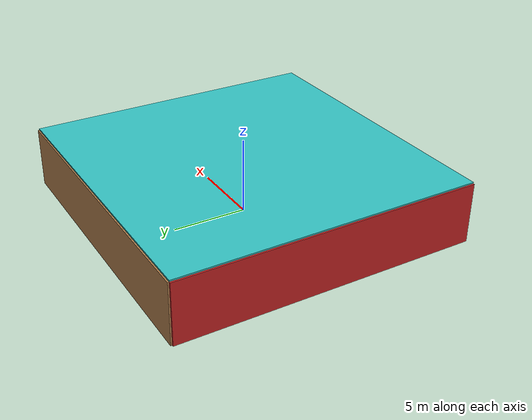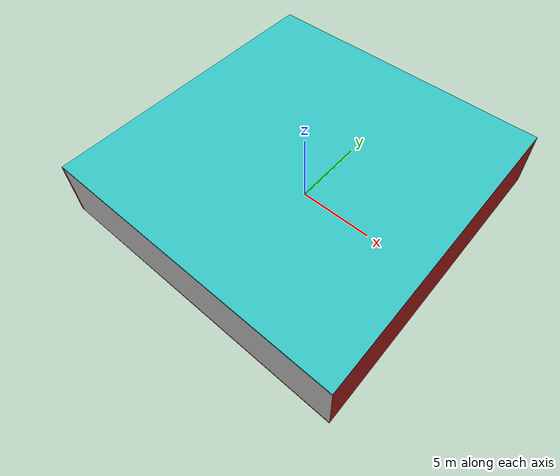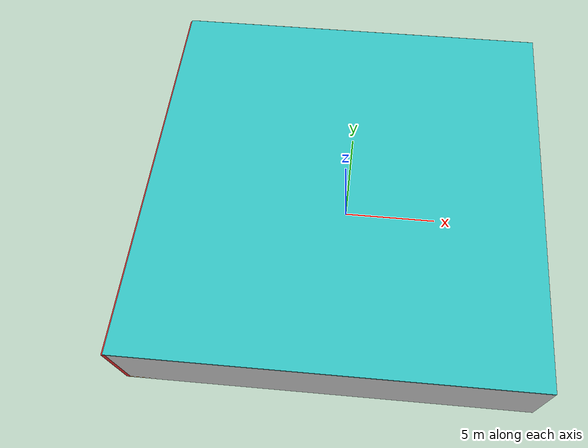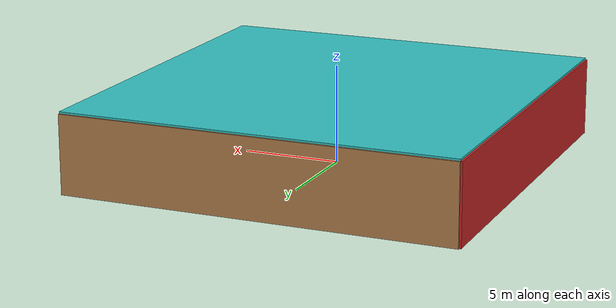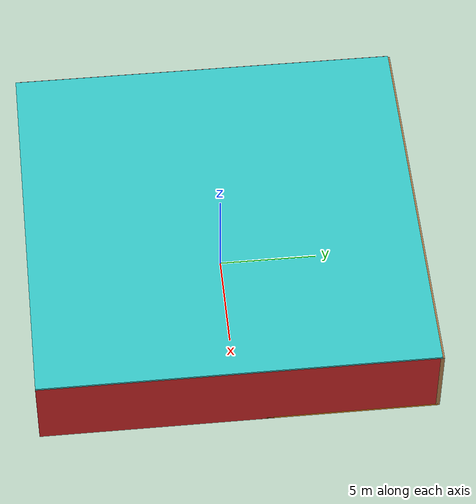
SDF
<sdf version="1.4">
 <world name="default">
  <physics type="ode">
   <max_step_size>0.001</max_step_size>
   <real_time_factor>1</real_time_factor>
   <real_time_update_rate>1000</real_time_update_rate>
   <gravity>0 0 -9.8</gravity>
  </physics>
  <scene><ambient>0.4 0.4 0.4 1</ambient><background>0.7 0.7 0.7 1</background><shadows>1</shadows></scene>
  <model name="Surrounding">
   <static>1</static>
   <link name="Ceiling">
    <collision name="Ceiling_Collision"><geometry><box><size>20 20 0.1</size></box></geometry></collision>
    <visual name="Ceiling_Visual">
     <geometry><box><size>20 20 0.1</size></box></geometry>
     <material>
      <script><uri>file://media/materials/scripts/gazebo.material</uri><name>Gazebo/TurquoiseGlow</name></script>
     </material>
    </visual>
    <pose>0 0 4.05 0 0 0</pose>
   </link>
   <link name="Wall_South">
    <collision name="Wall_South_Collision">
     <geometry><box><size>20 0 4</size></box></geometry>
     <pose>0 0 2 0 -0 0</pose>
    </collision>
    <visual name="Wall_South_Visual">
     <pose>0 0 2 0 -0 0</pose>
     <geometry><box><size>20 0 4</size></box></geometry>
     <material>
      <script><uri>file://media/materials/scripts/gazebo.material</uri><name>Gazebo/LightOn</name></script>
     </material>
    </visual>
    <velocity_decay><linear>0</linear><angular>0</angular></velocity_decay>
    <pose>0 -10 0 0 -0 0</pose>
   </link>
   <link name="Wall_East">
    <collision name="Wall_21_Collision">
     <geometry><box><size>20 0 4</size></box></geometry>
     <pose>0 0 2 0 -0 0</pose>
    </collision>
    <visual name="Wall_21_Visual">
     <pose>0 0 2 0 -0 0</pose>
     <geometry><box><size>20 0 4</size></box></geometry>
     <material>
      <script><uri>file://media/materials/scripts/gazebo.material</uri><name>Gazebo/RedBright</name></script>
     </material>
    </visual>
    <velocity_decay><linear>0</linear><angular>0</angular></velocity_decay>
    <pose>10 0 0 0 -0 1.5708</pose>
   </link>
   <link name="Wall_North">
    <collision name="Wall_22_Collision">
     <geometry><box><size>20 0.2 4</size></box></geometry>
     <pose>0 0 2 0 -0 0</pose>
    </collision>
    <visual name="Wall_22_Visual">
     <pose>0 0 2 0 -0 0</pose>
     <geometry><box><size>20 0.2 4</size></box></geometry>
     <material>
      <script><uri>file://media/materials/scripts/gazebo.material</uri><name>Gazebo/WoodPallet</name></script>
     </material>
    </visual>
    <velocity_decay><linear>0</linear><angular>0</angular></velocity_decay>
    <pose>0 10 0 0 -0 0</pose>
   </link>
   <link name="Wall_West">
    <collision name="Wall_23_Collision">
     <geometry><box><size>20 0.2 4</size></box></geometry>
     <pose>0 0 2 0 -0 0</pose>
    </collision>
    <visual name="Wall_23_Visual">
     <pose>0 0 2 0 -0 0</pose>
     <geometry><box><size>20 0.2 4</size></box></geometry>
     <material>
      <script><uri>file://media/materials/scripts/gazebo.material</uri><name>Gazebo/RedGlow</name></script>
     </material>
    </visual>
    <velocity_decay><linear>0</linear><angular>0</angular></velocity_decay>
    <pose>-10 0 0 0 0 -1.5708</pose>
   </link>
   <link name="Ground_link">
    <collision name="collision">
     <pose>0 0 .05 0 -0 0</pose>
     <geometry><box><size>20 20 0.1</size></box></geometry>
    </collision>
    <visual name="visual">
     <pose>0 0 .05 0 -0 0</pose>
     <geometry><box><size>20 20 0.1</size></box></geometry>
     <material>
      <script><uri>file://media/materials/scripts/gazebo.material</uri><name>Gazebo/Orange</name></script>
     </material>
    </visual>
   </link>
   <static>1</static>
  </model>
  <spherical_coordinates>
   <surface_model>EARTH_WGS84</surface_model>
   <latitude_deg>0</latitude_deg>
   <longitude_deg>0</longitude_deg>
   <elevation>0</elevation>
   <heading_deg>0</heading_deg>
  </spherical_coordinates>
  <light name="lightball_0" type="diffuse">
   <diffuse>0.8 0.8 0.8 1</diffuse>
   <specular>0.2 0.2 0.2 1</specular>
   <attenuation>
    <range>100</range>
    <constant>0.7</constant>
    <linear>0.01</linear>
    <quadratic>0.001</quadratic>
   </attenuation>
   <direction>-0.5 0.1 -0.9</direction>
   <pose>-3.56815844558 3.614813284 1.6771239949 0 0 0</pose>
  </light>
  <light name="lightball_1" type="diffuse">
   <diffuse>0.8 0.8 0.8 1</diffuse>
   <specular>0.2 0.2 0.2 1</specular>
   <attenuation>
    <range>100</range>
    <constant>0.7</constant>
    <linear>0.01</linear>
    <quadratic>0.001</quadratic>
   </attenuation>
   <direction>-0.5 0.1 -0.9</direction>
   <pose>9.80166187427 6.97649371949 1.89212701074 0 0 0</pose>
  </light>
  <light name="lightball_2" type="diffuse">
   <diffuse>0.8 0.8 0.8 1</diffuse>
   <specular>0.2 0.2 0.2 1</specular>
   <attenuation>
    <range>100</range>
    <constant>0.7</constant>
    <linear>0.01</linear>
    <quadratic>0.001</quadratic>
   </attenuation>
   <direction>-0.5 0.1 -0.9</direction>
   <pose>-8.46107886899 -1.4100339471 3.71217616666 0 0 0</pose>
  </light>
  <light name="lightball_3" type="diffuse">
   <diffuse>0.8 0.8 0.8 1</diffuse>
   <specular>0.2 0.2 0.2 1</specular>
   <attenuation>
    <range>100</range>
    <constant>0.7</constant>
    <linear>0.01</linear>
    <quadratic>0.001</quadratic>
   </attenuation>
   <direction>-0.5 0.1 -0.9</direction>
   <pose>7.65079314462 -5.25415447036 1.78704008869 0 0 0</pose>
  </light>
  <include><uri>model://table</uri><pose>-5.02059354833 -2.12108375199 0 0 0 2.41470717591</pose></include>
  <include>
   <uri>model://robocup_3Dsim_goal</uri>
   <pose>-0.855574592526 5.25867074691 0 0 0 2.1240897324</pose>
  </include>
  <include><uri>model://table</uri><pose>1.74086939621 -1.98833510028 0 0 0 0.327364999853</pose></include>
  <include><uri>model://cabinet</uri><pose>4.08756323566 -7.37397904064 0 0 0 0.828362521863</pose></include>
  <include>
   <uri>model://construction_cone</uri>
   <pose>3.94054977939 4.70222307469 0 0 0 1.12095095254</pose>
  </include>
 </world>
</sdf>

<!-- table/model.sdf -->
<sdf version="1.5">
  <model name="table">
    <static>true</static>
    <link name="link">
      <collision name="surface">
        <pose>0 0 1.0 0 0 0</pose>
        <geometry>
          <box>
            <size>1.5 0.8 0.03</size>
          </box>
        </geometry>
        <surface>
          <friction>
            <ode>
              <mu>0.6</mu>
              <mu2>0.6</mu2>
            </ode>
          </friction>
        </surface>
      </collision>
      <visual name="visual1">
        <pose>0 0 1.0 0 0 0</pose>
        <geometry>
          <box>
            <size>1.5 0.8 0.03</size>
          </box>
        </geometry>
        <material>
          <script>
            <uri>model://media/materials/scripts/gazebo.material</uri>
            <name>Gazebo/Wood</name>
          </script>
        </material>
      </visual>
      <collision name="front_left_leg">
        <pose>0.68 0.38 0.5 0 0 0</pose>
        <geometry>
          <cylinder>
            <radius>0.02</radius>
            <length>1.0</length>
          </cylinder>
        </geometry>
      </collision>
      <visual name="front_left_leg">
        <pose>0.68 0.38 0.5 0 0 0</pose>
        <geometry>
          <cylinder>
            <radius>0.02</radius>
            <length>1.0</length>
          </cylinder>
        </geometry>
        <material>
          <script>
            <uri>model://media/materials/scripts/gazebo.material</uri>
            <name>Gazebo/Grey</name>
          </script>
        </material>
      </visual>
      <collision name="front_right_leg">
        <pose>0.68 -0.38 0.5 0 0 0</pose>
        <geometry>
          <cylinder>
            <radius>0.02</radius>
            <length>1.0</length>
          </cylinder>
        </geometry>
      </collision>
      <visual name="front_right_leg">
        <pose>0.68 -0.38 0.5 0 0 0</pose>
        <geometry>
          <cylinder>
            <radius>0.02</radius>
            <length>1.0</length>
          </cylinder>
        </geometry>
        <material>
          <script>
            <uri>model://media/materials/scripts/gazebo.material</uri>
            <name>Gazebo/Grey</name>
          </script>
        </material>
      </visual>
      <collision name="back_right_leg">
        <pose>-0.68 -0.38 0.5 0 0 0</pose>
        <geometry>
          <cylinder>
            <radius>0.02</radius>
            <length>1.0</length>
          </cylinder>
        </geometry>
      </collision>
      <visual name="back_right_leg">
        <pose>-0.68 -0.38 0.5 0 0 0</pose>
        <geometry>
          <cylinder>
            <radius>0.02</radius>
            <length>1.0</length>
          </cylinder>
        </geometry>
        <material>
          <script>
            <uri>model://media/materials/scripts/gazebo.material</uri>
            <name>Gazebo/Grey</name>
          </script>
        </material>
      </visual>
      <collision name="back_left_leg">
        <pose>-0.68 0.38 0.5 0 0 0</pose>
        <geometry>
          <cylinder>
            <radius>0.02</radius>
            <length>1.0</length>
          </cylinder>
        </geometry>
      </collision>
      <visual name="back_left_leg">
        <pose>-0.68 0.38 0.5 0 0 0</pose>
        <geometry>
          <cylinder>
            <radius>0.02</radius>
            <length>1.0</length>
          </cylinder>
        </geometry>
        <material>
          <script>
            <uri>model://media/materials/scripts/gazebo.material</uri>
            <name>Gazebo/Grey</name>
          </script>
        </material>
      </visual>
    </link>
  </model>
</sdf>

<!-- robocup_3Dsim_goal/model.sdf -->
<sdf version="1.5">
  <model name="robocup_3d_goal">
    <static>true</static>
    <link name="left_post">
      <pose>0 1.05 0.45 0 0 0</pose>
      <collision name="collision">
        <geometry>
          <cylinder>
            <radius>0.05</radius>
            <length>0.9</length>
          </cylinder>
        </geometry>
      </collision>
      <visual name="visual">
        <geometry>
          <cylinder>
            <radius>0.05</radius>
            <length>0.9</length>
          </cylinder>
        </geometry>
        <material>
          <script>
            <uri>file://media/materials/scripts/gazebo.material</uri>
            <name>Gazebo/ZincYellow</name>
          </script>
        </material>
      </visual>
    </link>
    <link name="left_support_horiz_lower">
      <pose>0.30 1.05 0.01 0 0 0</pose>
      <collision name="collision">
        <geometry>
          <box>
            <size>0.50 0.02 0.02</size>
          </box>
        </geometry>
      </collision>
      <visual name="visual">
        <geometry>
          <box>
            <size>0.50 0.02 0.02</size>
          </box>
        </geometry>
        <material>
          <script>
            <uri>file://media/materials/scripts/gazebo.material</uri>
            <name>Gazebo/White</name>
          </script>
        </material>
      </visual>
    </link>
    <link name="left_support_horiz_upper">
      <pose>0.30 1.05 0.79 0 0 0</pose>
      <collision name="collision">
        <geometry>
          <box>
            <size>0.50 0.02 0.02</size>
          </box>
        </geometry>
      </collision>
      <visual name="visual">
        <geometry>
          <box>
            <size>0.50 0.02 0.02</size>
          </box>
        </geometry>
        <material>
          <script>
            <uri>file://media/materials/scripts/gazebo.material</uri>
            <name>Gazebo/White</name>
          </script>
        </material>
      </visual>
    </link>
    <link name="left_support_vertical">
      <pose>0.56 1.05 0.4 0 1.5708 0</pose>
      <collision name="collision">
        <geometry>
          <box>
            <size>0.80 0.02 0.02</size>
          </box>
        </geometry>
      </collision>
      <visual name="visual">
        <geometry>
          <box>
            <size>0.80 0.02 0.02</size>
          </box>
        </geometry>
        <material>
          <script>
            <uri>file://media/materials/scripts/gazebo.material</uri>
            <name>Gazebo/White</name>
          </script>
        </material>
      </visual>
    </link>
    <link name="right_support_horiz_lower">
      <pose>0.30 -1.05 0.01 0 0 0</pose>
      <collision name="collision">
        <geometry>
          <box>
            <size>0.50 0.02 0.02</size>
          </box>
        </geometry>
      </collision>
      <visual name="visual">
        <geometry>
          <box>
            <size>0.50 0.02 0.02</size>
          </box>
        </geometry>
        <material>
          <script>
            <uri>file://media/materials/scripts/gazebo.material</uri>
            <name>Gazebo/White</name>
          </script>
        </material>
      </visual>
    </link>
    <link name="right_support_horiz_upper">
      <pose>0.30 -1.05 0.79 0 0 0</pose>
      <collision name="collision">
        <geometry>
          <box>
            <size>0.50 0.02 0.02</size>
          </box>
        </geometry>
      </collision>
      <visual name="visual">
        <geometry>
          <box>
            <size>0.50 0.02 0.02</size>
          </box>
        </geometry>
        <material>
          <script>
            <uri>file://media/materials/scripts/gazebo.material</uri>
            <name>Gazebo/White</name>
          </script>
        </material>
      </visual>
    </link>
    <link name="right_support_vertical">
      <pose>0.56 -1.05 0.4 0 1.5708 0</pose>
      <collision name="collision">
        <geometry>
          <box>
            <size>0.80 0.02 0.02</size>
          </box>
        </geometry>
      </collision>
      <visual name="visual">
        <geometry>
          <box>
            <size>0.80 0.02 0.02</size>
          </box>
        </geometry>
        <material>
          <script>
            <uri>file://media/materials/scripts/gazebo.material</uri>
            <name>Gazebo/White</name>
          </script>
        </material>
      </visual>
    </link>
    <link name="center_support_horiz_lower">
      <pose>0.56 0 0.01 0 1.5708 0</pose>
      <collision name="collision">
        <geometry>
          <box>
            <size>0.02 2.08 0.02</size>
          </box>
        </geometry>
      </collision>
      <visual name="visual">
        <geometry>
          <box>
            <size>0.02 2.08 0.02</size>
          </box>
        </geometry>
        <material>
          <script>
            <uri>file://media/materials/scripts/gazebo.material</uri>
            <name>Gazebo/White</name>
          </script>
        </material>
      </visual>
    </link>
    <link name="center_support_horiz_upper">
      <pose>0.56 0 0.79 0 1.5708 0</pose>
      <collision name="collision">
        <geometry>
          <box>
            <size>0.02 2.08 0.02</size>
          </box>
        </geometry>
      </collision>
      <visual name="visual">
        <geometry>
          <box>
            <size>0.02 2.08 0.02</size>
          </box>
        </geometry>
        <material>
          <script>
            <uri>file://media/materials/scripts/gazebo.material</uri>
            <name>Gazebo/White</name>
          </script>
        </material>
      </visual>
    </link>
    <link name="right_post">
      <pose>0 -1.05 0.45 0 0 0</pose>
      <collision name="collision">
        <geometry>
          <cylinder>
            <radius>0.05</radius>
            <length>0.9</length>
          </cylinder>
        </geometry>
      </collision>
      <visual name="visual">
        <geometry>
          <cylinder>
            <radius>0.05</radius>
            <length>0.9</length>
          </cylinder>
        </geometry>
        <material>
          <script>
            <uri>file://media/materials/scripts/gazebo.material</uri>
            <name>Gazebo/ZincYellow</name>
          </script>
        </material>
      </visual>
    </link>
    <link name="crossbar">
      <pose>0 0 0.85 1.57 1.57 0</pose>
      <collision name="collision">
        <geometry>
          <cylinder>
            <radius>0.05</radius>
            <length>2.0</length>
          </cylinder>
        </geometry>
      </collision>
      <visual name="visual">
        <geometry>
          <cylinder>
            <radius>0.05</radius>
            <length>2.0</length>
          </cylinder>
        </geometry>
        <material>
          <script>
            <uri>file://media/materials/scripts/gazebo.material</uri>
            <name>Gazebo/ZincYellow</name>
          </script>
        </material>
      </visual>
    </link>
    <link name="center_net">
      <pose>0.56 0 0.40 0 0 0</pose>
      <collision name="collision">
        <geometry>
          <box>
            <size>0.01 2.1 0.80</size>
          </box>
        </geometry>
      </collision>
      <visual name="visual">
        <geometry>
          <box>
            <size>0.01 2.1 0.80</size>
          </box>
        </geometry>
        <material>
          <script>
            <uri>model://../model_source/models/robocup09_spl_field/materials/scripts/</uri>
            <uri>model://../model_source/models/robocup09_spl_field/materials/textures/</uri>
            <name>RoboCup/Net</name>
          </script>
        </material>
      </visual>
    </link>
    <link name="left_net">
      <pose>0.30 1.05 0.40 0 0 0</pose>
      <collision name="collision">
        <geometry>
          <box>
            <size>0.50 0.01 0.76</size>
          </box>
        </geometry>
      </collision>
      <visual name="visual">
        <geometry>
          <box>
            <size>0.50 0.01 0.76</size>
          </box>
        </geometry>
        <material>
          <script>
            <uri>model://../model_source/models/robocup09_spl_field/materials/scripts/</uri>
            <uri>model://../model_source/models/robocup09_spl_field/materials/textures/</uri>
            <name>RoboCup/Net</name>
          </script>
        </material>
      </visual>
    </link>
    <link name="right_net">
      <pose>0.30 -1.05 0.40 0 0 0</pose>
      <collision name="collision">
        <geometry>
          <box>
            <size>0.50 0.01 0.76</size>
          </box>
        </geometry>
      </collision>
      <visual name="visual">
        <geometry>
          <box>
            <size>0.50 0.01 0.76</size>
          </box>
        </geometry>
        <material>
          <script>
            <uri>model://../model_source/models/robocup09_spl_field/materials/scripts/</uri>
            <uri>model://../model_source/models/robocup09_spl_field/materials/textures/</uri>
            <name>RoboCup/Net</name>
          </script>
        </material>
      </visual>
    </link>
  </model>
</sdf>

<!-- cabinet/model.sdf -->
<sdf version="1.5">
  <model name="cabinet">
    <static>true</static>
    <link name="cabinet_bottom_plate">
      <inertial>
        <pose>0 0 -1 0 0 0</pose>
        <inertia>
          <ixx>2.050000</ixx>
          <ixy>0</ixy>
          <ixz>0</ixz>
          <iyy>2.050000</iyy>
          <iyz>0</iyz>
          <izz>2.050000</izz>
        </inertia>
        <mass>25.000000</mass>
      </inertial>
      <collision name="cabinet_bottom_plate_geom">
        <pose>0 0 0.010000 0 0 0</pose>
        <geometry>
          <box>
            <size>0.450000 0.450000 0.020000</size>
          </box>
        </geometry>
      </collision>
      <visual name="cabinet_bottom_plate_geom_visual">
        <pose>0 0 0.010000 0 0 0</pose>
        <geometry>
          <box>
            <size>0.450000 0.450000 0.020000</size>
          </box>
        </geometry>
        <material>
          <script>
            <uri>model://media/materials/scripts/gazebo.material</uri>
            <name>Gazebo/Wood</name>
          </script>
        </material>
      </visual>
      <collision name="cabinet_bottom_plate_geom_cabinet_back_plate">
        <pose>0.235000 0 0.510000 0 0 0</pose>
        <geometry>
          <box>
            <size>0.020000 0.450000 1.020000</size>
          </box>
        </geometry>
      </collision>
      <visual name="cabinet_bottom_plate_geom_cabinet_back_plate_visual">
        <pose>0.235000 0 0.510000 0 0 0</pose>
        <geometry>
          <box>
            <size>0.020000 0.450000 1.020000</size>
          </box>
        </geometry>
        <material>
          <script>
            <uri>model://media/materials/scripts/gazebo.material</uri>
            <name>Gazebo/Wood</name>
          </script>
        </material>
      </visual>
      <collision name="cabinet_bottom_plate_geom_cabinet_left_plate">
        <pose>0 0.235000 0.510000 0 0 0</pose>
        <geometry>
          <box>
            <size>0.450000 0.020000 1.020000</size>
          </box>
        </geometry>
      </collision>
      <visual name="cabinet_bottom_plate_geom_cabinet_left_plate_visual">
        <pose>0 0.235000 0.510000 0 0 0</pose>
        <geometry>
          <box>
            <size>0.450000 0.020000 1.020000</size>
          </box>
        </geometry>
        <material>
          <script>
            <uri>model://media/materials/scripts/gazebo.material</uri>
            <name>Gazebo/Wood</name>
          </script>
        </material>
      </visual>
      <collision name="cabinet_bottom_plate_geom_cabinet_middle_plate">
        <pose>0 0 0.510000 0 0 0</pose>
        <geometry>
          <box>
            <size>0.450000 0.450000 0.020000</size>
          </box>
        </geometry>
      </collision>
      <visual name="cabinet_bottom_plate_geom_cabinet_middle_plate_visual">
        <pose>0 0 0.510000 0 0 0</pose>
        <geometry>
          <box>
            <size>0.450000 0.450000 0.020000</size>
          </box>
        </geometry>
        <material>
          <script>
            <uri>model://media/materials/scripts/gazebo.material</uri>
            <name>Gazebo/Wood</name>
          </script>
        </material>
      </visual>
      <collision name="cabinet_bottom_plate_geom_cabinet_right_plate">
        <pose>0 -0.235000 0.510000 0 0 0</pose>
        <geometry>
          <box>
            <size>0.450000 0.020000 1.020000</size>
          </box>
        </geometry>
      </collision>
      <visual name="cabinet_bottom_plate_geom_cabinet_right_plate_visual">
        <pose>0 -0.235000 0.510000 0 0 0</pose>
        <geometry>
          <box>
            <size>0.450000 0.020000 1.020000</size>
          </box>
        </geometry>
        <material>
          <script>
            <uri>model://media/materials/scripts/gazebo.material</uri>
            <name>Gazebo/Wood</name>
          </script>
        </material>
      </visual>
      <collision name="cabinet_bottom_plate_geom_cabinet_top_plate">
        <pose>0 0 1.010000 0 0 0</pose>
        <geometry>
          <box>
            <size>0.450000 0.450000 0.020000</size>
          </box>
        </geometry>
      </collision>
      <visual name="cabinet_bottom_plate_geom_cabinet_top_plate_visual">
        <pose>0 0 1.010000 0 0 0</pose>
        <geometry>
          <box>
            <size>0.450000 0.450000 0.020000</size>
          </box>
        </geometry>
        <material>
          <script>
            <uri>model://media/materials/scripts/gazebo.material</uri>
            <name>Gazebo/Wood</name>
          </script>
        </material>
      </visual>
    </link>
  </model>
</sdf>

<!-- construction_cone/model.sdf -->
<sdf version="1.5">
  <model name="Construction Cone">
    <link name="link">
      <collision name="collision">
        <geometry>
          <mesh>
            <scale>10 10 10</scale>
            <uri>file://isr-testbed/construction_cone/meshes/construction_cone.dae</uri>
          </mesh>
        </geometry>
      </collision>
      <visual name="visual">
        <geometry>
          <mesh>
            <scale>10 10 10</scale>
            <uri>file://isr-testbed/construction_cone/meshes/construction_cone.dae</uri>
          </mesh>
        </geometry>
      </visual>
    </link>
  </model>
</sdf>
